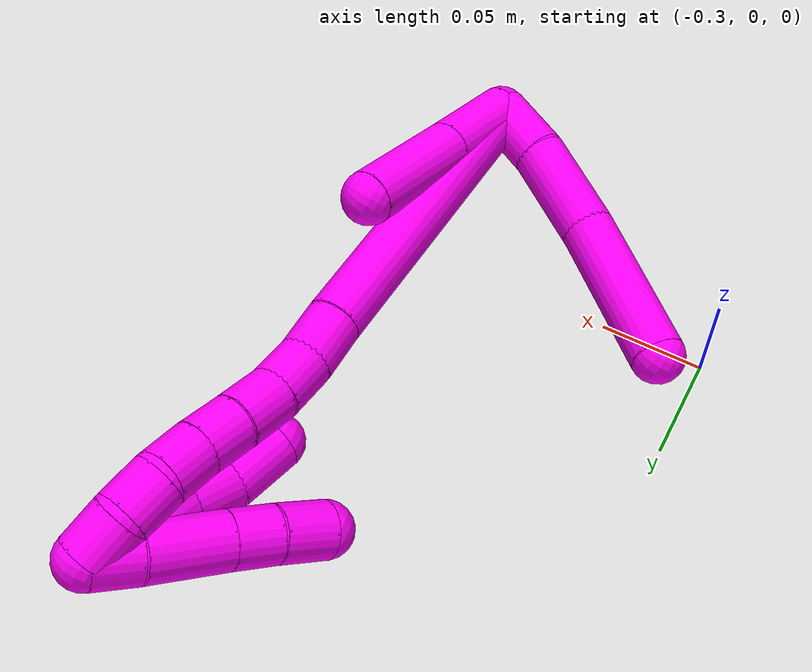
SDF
<sdf version="1.7">
 <world name="default">
  <model name="10">
   <static>0</static>
   <link name="10">
    <collision name="collision-cylinder-e_1_2_8">
     <pose>-0.001367 0.009751 -0.011833 -2.45238 -0.088907 0.246606</pose>
     <geometry><cylinder><radius>0.0125</radius><length>0.030787</length></cylinder></geometry>
     <surface>
      <friction><ode><mu>1.16</mu><mu2>1.16</mu2><slip1>0</slip1><slip2>0</slip2></ode></friction>
      <contact><ode><kp>1e+06</kp><kd>1</kd><max_vel>0</max_vel><min_depth>0.001</min_depth></ode></contact>
     </surface>
    </collision>
    <visual name="visual-cylinder-e_1_2_8">
     <pose>-0.001367 0.009751 -0.011833 -2.45238 -0.088907 0.246606</pose>
     <geometry><cylinder><radius>0.0125</radius><length>0.030787</length></cylinder></geometry>
     <material><ambient>1 0 0.964706 1</ambient></material>
    </visual>
    <collision name="collision-cylinder-e_2_8_9">
     <pose>-0.001628 0.034926 -0.040542 -2.40107 0.048337 -0.12439</pose>
     <geometry><cylinder><radius>0.0125</radius><length>0.04578</length></cylinder></geometry>
     <surface>
      <friction><ode><mu>1.16</mu><mu2>1.16</mu2><slip1>0</slip1><slip2>0</slip2></ode></friction>
      <contact><ode><kp>1e+06</kp><kd>1</kd><max_vel>0</max_vel><min_depth>0.001</min_depth></ode></contact>
     </surface>
    </collision>
    <visual name="visual-cylinder-e_2_8_9">
     <pose>-0.001628 0.034926 -0.040542 -2.40107 0.048337 -0.12439</pose>
     <geometry><cylinder><radius>0.0125</radius><length>0.04578</length></cylinder></geometry>
     <material><ambient>1 0 0.964706 1</ambient></material>
    </visual>
    <collision name="collision-cylinder-e_3_9_6">
     <pose>-0.000776 0.079525 -0.07971 -2.22328 -0.00694 0.014037</pose>
     <geometry><cylinder><radius>0.0125</radius><length>0.073433</length></cylinder></geometry>
     <surface>
      <friction><ode><mu>1.16</mu><mu2>1.16</mu2><slip1>0</slip1><slip2>0</slip2></ode></friction>
      <contact><ode><kp>1e+06</kp><kd>1</kd><max_vel>0</max_vel><min_depth>0.001</min_depth></ode></contact>
     </surface>
    </collision>
    <visual name="visual-cylinder-e_3_9_6">
     <pose>-0.000776 0.079525 -0.07971 -2.22328 -0.00694 0.014037</pose>
     <geometry><cylinder><radius>0.0125</radius><length>0.073433</length></cylinder></geometry>
     <material><ambient>1 0 0.964706 1</ambient></material>
    </visual>
    <collision name="collision-cylinder-e_1_2_10">
     <pose>0.004291 0.019574 0.008525 -1.16006 0.198344 -0.130201</pose>
     <geometry><cylinder><radius>0.0125</radius><length>0.043553</length></cylinder></geometry>
     <surface>
      <friction><ode><mu>1.16</mu><mu2>1.16</mu2><slip1>0</slip1><slip2>0</slip2></ode></friction>
      <contact><ode><kp>1e+06</kp><kd>1</kd><max_vel>0</max_vel><min_depth>0.001</min_depth></ode></contact>
     </surface>
    </collision>
    <visual name="visual-cylinder-e_1_2_10">
     <pose>0.004291 0.019574 0.008525 -1.16006 0.198344 -0.130201</pose>
     <geometry><cylinder><radius>0.0125</radius><length>0.043553</length></cylinder></geometry>
     <material><ambient>1 0 0.964706 1</ambient></material>
    </visual>
    <collision name="collision-cylinder-e_2_10_5">
     <pose>0.013682 0.064528 0.028291 -1.15382 0.1817 -0.118432</pose>
     <geometry><cylinder><radius>0.0125</radius><length>0.056447</length></cylinder></geometry>
     <surface>
      <friction><ode><mu>1.16</mu><mu2>1.16</mu2><slip1>0</slip1><slip2>0</slip2></ode></friction>
      <contact><ode><kp>1e+06</kp><kd>1</kd><max_vel>0</max_vel><min_depth>0.001</min_depth></ode></contact>
     </surface>
    </collision>
    <visual name="visual-cylinder-e_2_10_5">
     <pose>0.013682 0.064528 0.028291 -1.15382 0.1817 -0.118432</pose>
     <geometry><cylinder><radius>0.0125</radius><length>0.056447</length></cylinder></geometry>
     <material><ambient>1 0 0.964706 1</ambient></material>
    </visual>
    <collision name="collision-cylinder-e_1_2_11">
     <pose>0.02361 0.070324 0.013851 -1.37632 0.318214 -0.262366</pose>
     <geometry><cylinder><radius>0.0125</radius><length>0.150928</length></cylinder></geometry>
     <surface>
      <friction><ode><mu>1.16</mu><mu2>1.16</mu2><slip1>0</slip1><slip2>0</slip2></ode></friction>
      <contact><ode><kp>1e+06</kp><kd>1</kd><max_vel>0</max_vel><min_depth>0.001</min_depth></ode></contact>
     </surface>
    </collision>
    <visual name="visual-cylinder-e_1_2_11">
     <pose>0.02361 0.070324 0.013851 -1.37632 0.318214 -0.262366</pose>
     <geometry><cylinder><radius>0.0125</radius><length>0.150928</length></cylinder></geometry>
     <material><ambient>1 0 0.964706 1</ambient></material>
    </visual>
    <collision name="collision-cylinder-e_2_11_12">
     <pose>0.051262 0.151436 0.029355 -1.41874 0.354667 -0.305296</pose>
     <geometry><cylinder><radius>0.0125</radius><length>0.023275</length></cylinder></geometry>
     <surface>
      <friction><ode><mu>1.16</mu><mu2>1.16</mu2><slip1>0</slip1><slip2>0</slip2></ode></friction>
      <contact><ode><kp>1e+06</kp><kd>1</kd><max_vel>0</max_vel><min_depth>0.001</min_depth></ode></contact>
     </surface>
    </collision>
    <visual name="visual-cylinder-e_2_11_12">
     <pose>0.051262 0.151436 0.029355 -1.41874 0.354667 -0.305296</pose>
     <geometry><cylinder><radius>0.0125</radius><length>0.023275</length></cylinder></geometry>
     <material><ambient>1 0 0.964706 1</ambient></material>
    </visual>
    <collision name="collision-cylinder-e_3_12_13">
     <pose>0.057616 0.172688 0.0339 -1.30126 0.209818 -0.15996</pose>
     <geometry><cylinder><radius>0.0125</radius><length>0.022201</length></cylinder></geometry>
     <surface>
      <friction><ode><mu>1.16</mu><mu2>1.16</mu2><slip1>0</slip1><slip2>0</slip2></ode></friction>
      <contact><ode><kp>1e+06</kp><kd>1</kd><max_vel>0</max_vel><min_depth>0.001</min_depth></ode></contact>
     </surface>
    </collision>
    <visual name="visual-cylinder-e_3_12_13">
     <pose>0.057616 0.172688 0.0339 -1.30126 0.209818 -0.15996</pose>
     <geometry><cylinder><radius>0.0125</radius><length>0.022201</length></cylinder></geometry>
     <material><ambient>1 0 0.964706 1</ambient></material>
    </visual>
    <collision name="collision-cylinder-e_4_13_14">
     <pose>0.06159 0.193551 0.041254 -1.16536 0.145844 -0.096208</pose>
     <geometry><cylinder><radius>0.0125</radius><length>0.022874</length></cylinder></geometry>
     <surface>
      <friction><ode><mu>1.16</mu><mu2>1.16</mu2><slip1>0</slip1><slip2>0</slip2></ode></friction>
      <contact><ode><kp>1e+06</kp><kd>1</kd><max_vel>0</max_vel><min_depth>0.001</min_depth></ode></contact>
     </surface>
    </collision>
    <visual name="visual-cylinder-e_4_13_14">
     <pose>0.06159 0.193551 0.041254 -1.16536 0.145844 -0.096208</pose>
     <geometry><cylinder><radius>0.0125</radius><length>0.022874</length></cylinder></geometry>
     <material><ambient>1 0 0.964706 1</ambient></material>
    </visual>
    <collision name="collision-cylinder-e_5_14_15">
     <pose>0.065334 0.212912 0.049949 -1.12962 0.207002 -0.131452</pose>
     <geometry><cylinder><radius>0.0125</radius><length>0.020257</length></cylinder></geometry>
     <surface>
      <friction><ode><mu>1.16</mu><mu2>1.16</mu2><slip1>0</slip1><slip2>0</slip2></ode></friction>
      <contact><ode><kp>1e+06</kp><kd>1</kd><max_vel>0</max_vel><min_depth>0.001</min_depth></ode></contact>
     </surface>
    </collision>
    <visual name="visual-cylinder-e_5_14_15">
     <pose>0.065334 0.212912 0.049949 -1.12962 0.207002 -0.131452</pose>
     <geometry><cylinder><radius>0.0125</radius><length>0.020257</length></cylinder></geometry>
     <material><ambient>1 0 0.964706 1</ambient></material>
    </visual>
    <collision name="collision-cylinder-e_6_15_16">
     <pose>0.069282 0.231109 0.057728 -1.20409 0.186548 -0.128381</pose>
     <geometry><cylinder><radius>0.0125</radius><length>0.020133</length></cylinder></geometry>
     <surface>
      <friction><ode><mu>1.16</mu><mu2>1.16</mu2><slip1>0</slip1><slip2>0</slip2></ode></friction>
      <contact><ode><kp>1e+06</kp><kd>1</kd><max_vel>0</max_vel><min_depth>0.001</min_depth></ode></contact>
     </surface>
    </collision>
    <visual name="visual-cylinder-e_6_15_16">
     <pose>0.069282 0.231109 0.057728 -1.20409 0.186548 -0.128381</pose>
     <geometry><cylinder><radius>0.0125</radius><length>0.020133</length></cylinder></geometry>
     <material><ambient>1 0 0.964706 1</ambient></material>
    </visual>
    <collision name="collision-cylinder-e_7_16_17">
     <pose>0.075647 0.248862 0.064018 -1.25931 0.465712 -0.342201</pose>
     <geometry><cylinder><radius>0.0125</radius><length>0.020031</length></cylinder></geometry>
     <surface>
      <friction><ode><mu>1.16</mu><mu2>1.16</mu2><slip1>0</slip1><slip2>0</slip2></ode></friction>
      <contact><ode><kp>1e+06</kp><kd>1</kd><max_vel>0</max_vel><min_depth>0.001</min_depth></ode></contact>
     </surface>
    </collision>
    <visual name="visual-cylinder-e_7_16_17">
     <pose>0.075647 0.248862 0.064018 -1.25931 0.465712 -0.342201</pose>
     <geometry><cylinder><radius>0.0125</radius><length>0.020031</length></cylinder></geometry>
     <material><ambient>1 0 0.964706 1</ambient></material>
    </visual>
    <collision name="collision-cylinder-e_8_17_1">
     <pose>0.087383 0.264193 0.068821 -1.27704 0.793841 -0.603262</pose>
     <geometry><cylinder><radius>0.0125</radius><length>0.020301</length></cylinder></geometry>
     <surface>
      <friction><ode><mu>1.16</mu><mu2>1.16</mu2><slip1>0</slip1><slip2>0</slip2></ode></friction>
      <contact><ode><kp>1e+06</kp><kd>1</kd><max_vel>0</max_vel><min_depth>0.001</min_depth></ode></contact>
     </surface>
    </collision>
    <visual name="visual-cylinder-e_8_17_1">
     <pose>0.087383 0.264193 0.068821 -1.27704 0.793841 -0.603262</pose>
     <geometry><cylinder><radius>0.0125</radius><length>0.020301</length></cylinder></geometry>
     <material><ambient>1 0 0.964706 1</ambient></material>
    </visual>
    <collision name="collision-cylinder-e_1_1_18">
     <pose>0.09389 0.261843 0.064435 2.18403 -0.065109 -0.125316</pose>
     <geometry><cylinder><radius>0.0125</radius><length>0.022452</length></cylinder></geometry>
     <surface>
      <friction><ode><mu>1.16</mu><mu2>1.16</mu2><slip1>0</slip1><slip2>0</slip2></ode></friction>
      <contact><ode><kp>1e+06</kp><kd>1</kd><max_vel>0</max_vel><min_depth>0.001</min_depth></ode></contact>
     </surface>
    </collision>
    <visual name="visual-cylinder-e_1_1_18">
     <pose>0.09389 0.261843 0.064435 2.18403 -0.065109 -0.125316</pose>
     <geometry><cylinder><radius>0.0125</radius><length>0.022452</length></cylinder></geometry>
     <material><ambient>1 0 0.964706 1</ambient></material>
    </visual>
    <collision name="collision-cylinder-e_2_18_19">
     <pose>0.093579 0.240393 0.052772 1.97216 0.031426 0.047471</pose>
     <geometry><cylinder><radius>0.0125</radius><length>0.026713</length></cylinder></geometry>
     <surface>
      <friction><ode><mu>1.16</mu><mu2>1.16</mu2><slip1>0</slip1><slip2>0</slip2></ode></friction>
      <contact><ode><kp>1e+06</kp><kd>1</kd><max_vel>0</max_vel><min_depth>0.001</min_depth></ode></contact>
     </surface>
    </collision>
    <visual name="visual-cylinder-e_2_18_19">
     <pose>0.093579 0.240393 0.052772 1.97216 0.031426 0.047471</pose>
     <geometry><cylinder><radius>0.0125</radius><length>0.026713</length></cylinder></geometry>
     <material><ambient>1 0 0.964706 1</ambient></material>
    </visual>
    <collision name="collision-cylinder-e_3_19_20">
     <pose>0.092811 0.218197 0.041086 2.14941 -0.100017 -0.184423</pose>
     <geometry><cylinder><radius>0.0125</radius><length>0.023786</length></cylinder></geometry>
     <surface>
      <friction><ode><mu>1.16</mu><mu2>1.16</mu2><slip1>0</slip1><slip2>0</slip2></ode></friction>
      <contact><ode><kp>1e+06</kp><kd>1</kd><max_vel>0</max_vel><min_depth>0.001</min_depth></ode></contact>
     </surface>
    </collision>
    <visual name="visual-cylinder-e_3_19_20">
     <pose>0.092811 0.218197 0.041086 2.14941 -0.100017 -0.184423</pose>
     <geometry><cylinder><radius>0.0125</radius><length>0.023786</length></cylinder></geometry>
     <material><ambient>1 0 0.964706 1</ambient></material>
    </visual>
    <collision name="collision-cylinder-e_4_20_4">
     <pose>0.086638 0.196758 0.029607 1.98044 -0.377539 -0.566781</pose>
     <geometry><cylinder><radius>0.0125</radius><length>0.027049</length></cylinder></geometry>
     <surface>
      <friction><ode><mu>1.16</mu><mu2>1.16</mu2><slip1>0</slip1><slip2>0</slip2></ode></friction>
      <contact><ode><kp>1e+06</kp><kd>1</kd><max_vel>0</max_vel><min_depth>0.001</min_depth></ode></contact>
     </surface>
    </collision>
    <visual name="visual-cylinder-e_4_20_4">
     <pose>0.086638 0.196758 0.029607 1.98044 -0.377539 -0.566781</pose>
     <geometry><cylinder><radius>0.0125</radius><length>0.027049</length></cylinder></geometry>
     <material><ambient>1 0 0.964706 1</ambient></material>
    </visual>
    <collision name="collision-cylinder-e_1_1_21">
     <pose>0.093048 0.265396 0.062486 2.55273 -0.154464 -0.49972</pose>
     <geometry><cylinder><radius>0.0125</radius><length>0.020437</length></cylinder></geometry>
     <surface>
      <friction><ode><mu>1.16</mu><mu2>1.16</mu2><slip1>0</slip1><slip2>0</slip2></ode></friction>
      <contact><ode><kp>1e+06</kp><kd>1</kd><max_vel>0</max_vel><min_depth>0.001</min_depth></ode></contact>
     </surface>
    </collision>
    <visual name="visual-cylinder-e_1_1_21">
     <pose>0.093048 0.265396 0.062486 2.55273 -0.154464 -0.49972</pose>
     <geometry><cylinder><radius>0.0125</radius><length>0.020437</length></cylinder></geometry>
     <material><ambient>1 0 0.964706 1</ambient></material>
    </visual>
    <collision name="collision-cylinder-e_2_21_22">
     <pose>0.089449 0.248798 0.039952 2.48077 -0.112737 -0.326124</pose>
     <geometry><cylinder><radius>0.0125</radius><length>0.036042</length></cylinder></geometry>
     <surface>
      <friction><ode><mu>1.16</mu><mu2>1.16</mu2><slip1>0</slip1><slip2>0</slip2></ode></friction>
      <contact><ode><kp>1e+06</kp><kd>1</kd><max_vel>0</max_vel><min_depth>0.001</min_depth></ode></contact>
     </surface>
    </collision>
    <visual name="visual-cylinder-e_2_21_22">
     <pose>0.089449 0.248798 0.039952 2.48077 -0.112737 -0.326124</pose>
     <geometry><cylinder><radius>0.0125</radius><length>0.036042</length></cylinder></geometry>
     <material><ambient>1 0 0.964706 1</ambient></material>
    </visual>
    <collision name="collision-cylinder-e_3_22_23">
     <pose>0.086317 0.231879 0.017823 2.50339 -0.11058 -0.331954</pose>
     <geometry><cylinder><radius>0.0125</radius><length>0.020023</length></cylinder></geometry>
     <surface>
      <friction><ode><mu>1.16</mu><mu2>1.16</mu2><slip1>0</slip1><slip2>0</slip2></ode></friction>
      <contact><ode><kp>1e+06</kp><kd>1</kd><max_vel>0</max_vel><min_depth>0.001</min_depth></ode></contact>
     </surface>
    </collision>
    <visual name="visual-cylinder-e_3_22_23">
     <pose>0.086317 0.231879 0.017823 2.50339 -0.11058 -0.331954</pose>
     <geometry><cylinder><radius>0.0125</radius><length>0.020023</length></cylinder></geometry>
     <material><ambient>1 0 0.964706 1</ambient></material>
    </visual>
    <collision name="collision-cylinder-e_4_23_3">
     <pose>0.085004 0.218837 0.000483 2.49105 -0.017717 -0.052523</pose>
     <geometry><cylinder><radius>0.0125</radius><length>0.023497</length></cylinder></geometry>
     <surface>
      <friction><ode><mu>1.16</mu><mu2>1.16</mu2><slip1>0</slip1><slip2>0</slip2></ode></friction>
      <contact><ode><kp>1e+06</kp><kd>1</kd><max_vel>0</max_vel><min_depth>0.001</min_depth></ode></contact>
     </surface>
    </collision>
    <visual name="visual-cylinder-e_4_23_3">
     <pose>0.085004 0.218837 0.000483 2.49105 -0.017717 -0.052523</pose>
     <geometry><cylinder><radius>0.0125</radius><length>0.023497</length></cylinder></geometry>
     <material><ambient>1 0 0.964706 1</ambient></material>
    </visual>
    <collision name="collision-sphere-3">
     <pose>0.084795 0.211723 -0.008864 0 -0 0</pose>
     <geometry><sphere><radius>0.0125</radius></sphere></geometry>
     <surface>
      <friction><ode><mu>1.16</mu><mu2>1.16</mu2><slip1>0</slip1><slip2>0</slip2></ode></friction>
      <contact><ode><kp>1e+06</kp><kd>1</kd><max_vel>0</max_vel><min_depth>0.001</min_depth></ode></contact>
     </surface>
    </collision>
    <visual name="visual-sphere-3">
     <pose>0.084795 0.211723 -0.008864 0 -0 0</pose>
     <geometry><sphere><radius>0.0125</radius></sphere></geometry>
     <material><ambient>1 0 0.964706 1</ambient></material>
    </visual>
    <collision name="collision-sphere-23">
     <pose>0.085212 0.225951 0.009831 0 -0 0</pose>
     <geometry><sphere><radius>0.0125</radius></sphere></geometry>
     <surface>
      <friction><ode><mu>1.16</mu><mu2>1.16</mu2><slip1>0</slip1><slip2>0</slip2></ode></friction>
      <contact><ode><kp>1e+06</kp><kd>1</kd><max_vel>0</max_vel><min_depth>0.001</min_depth></ode></contact>
     </surface>
    </collision>
    <visual name="visual-sphere-23">
     <pose>0.085212 0.225951 0.009831 0 -0 0</pose>
     <geometry><sphere><radius>0.0125</radius></sphere></geometry>
     <material><ambient>1 0 0.964706 1</ambient></material>
    </visual>
    <collision name="collision-sphere-22">
     <pose>0.087421 0.237807 0.025815 0 -0 0</pose>
     <geometry><sphere><radius>0.0125</radius></sphere></geometry>
     <surface>
      <friction><ode><mu>1.16</mu><mu2>1.16</mu2><slip1>0</slip1><slip2>0</slip2></ode></friction>
      <contact><ode><kp>1e+06</kp><kd>1</kd><max_vel>0</max_vel><min_depth>0.001</min_depth></ode></contact>
     </surface>
    </collision>
    <visual name="visual-sphere-22">
     <pose>0.087421 0.237807 0.025815 0 -0 0</pose>
     <geometry><sphere><radius>0.0125</radius></sphere></geometry>
     <material><ambient>1 0 0.964706 1</ambient></material>
    </visual>
    <collision name="collision-sphere-21">
     <pose>0.091476 0.259788 0.054089 0 -0 0</pose>
     <geometry><sphere><radius>0.0125</radius></sphere></geometry>
     <surface>
      <friction><ode><mu>1.16</mu><mu2>1.16</mu2><slip1>0</slip1><slip2>0</slip2></ode></friction>
      <contact><ode><kp>1e+06</kp><kd>1</kd><max_vel>0</max_vel><min_depth>0.001</min_depth></ode></contact>
     </surface>
    </collision>
    <visual name="visual-sphere-21">
     <pose>0.091476 0.259788 0.054089 0 -0 0</pose>
     <geometry><sphere><radius>0.0125</radius></sphere></geometry>
     <material><ambient>1 0 0.964706 1</ambient></material>
    </visual>
    <collision name="collision-sphere-4">
     <pose>0.081653 0.185226 0.0246 0 -0 0</pose>
     <geometry><sphere><radius>0.0125</radius></sphere></geometry>
     <surface>
      <friction><ode><mu>1.16</mu><mu2>1.16</mu2><slip1>0</slip1><slip2>0</slip2></ode></friction>
      <contact><ode><kp>1e+06</kp><kd>1</kd><max_vel>0</max_vel><min_depth>0.001</min_depth></ode></contact>
     </surface>
    </collision>
    <visual name="visual-sphere-4">
     <pose>0.081653 0.185226 0.0246 0 -0 0</pose>
     <geometry><sphere><radius>0.0125</radius></sphere></geometry>
     <material><ambient>1 0 0.964706 1</ambient></material>
    </visual>
    <collision name="collision-sphere-20">
     <pose>0.091624 0.20829 0.034614 0 -0 0</pose>
     <geometry><sphere><radius>0.0125</radius></sphere></geometry>
     <surface>
      <friction><ode><mu>1.16</mu><mu2>1.16</mu2><slip1>0</slip1><slip2>0</slip2></ode></friction>
      <contact><ode><kp>1e+06</kp><kd>1</kd><max_vel>0</max_vel><min_depth>0.001</min_depth></ode></contact>
     </surface>
    </collision>
    <visual name="visual-sphere-20">
     <pose>0.091624 0.20829 0.034614 0 -0 0</pose>
     <geometry><sphere><radius>0.0125</radius></sphere></geometry>
     <material><ambient>1 0 0.964706 1</ambient></material>
    </visual>
    <collision name="collision-sphere-5">
     <pose>0.018782 0.089909 0.039533 0 -0 0</pose>
     <geometry><sphere><radius>0.0125</radius></sphere></geometry>
     <surface>
      <friction><ode><mu>1.16</mu><mu2>1.16</mu2><slip1>0</slip1><slip2>0</slip2></ode></friction>
      <contact><ode><kp>1e+06</kp><kd>1</kd><max_vel>0</max_vel><min_depth>0.001</min_depth></ode></contact>
     </surface>
    </collision>
    <visual name="visual-sphere-5">
     <pose>0.018782 0.089909 0.039533 0 -0 0</pose>
     <geometry><sphere><radius>0.0125</radius></sphere></geometry>
     <material><ambient>1 0 0.964706 1</ambient></material>
    </visual>
    <collision name="collision-sphere-10">
     <pose>0.008582 0.039148 0.017049 0 -0 0</pose>
     <geometry><sphere><radius>0.0125</radius></sphere></geometry>
     <surface>
      <friction><ode><mu>1.16</mu><mu2>1.16</mu2><slip1>0</slip1><slip2>0</slip2></ode></friction>
      <contact><ode><kp>1e+06</kp><kd>1</kd><max_vel>0</max_vel><min_depth>0.001</min_depth></ode></contact>
     </surface>
    </collision>
    <visual name="visual-sphere-10">
     <pose>0.008582 0.039148 0.017049 0 -0 0</pose>
     <geometry><sphere><radius>0.0125</radius></sphere></geometry>
     <material><ambient>1 0 0.964706 1</ambient></material>
    </visual>
    <collision name="collision-sphere-6">
     <pose>-0.001031 0.108698 -0.102002 0 -0 0</pose>
     <geometry><sphere><radius>0.0125</radius></sphere></geometry>
     <surface>
      <friction><ode><mu>1.16</mu><mu2>1.16</mu2><slip1>0</slip1><slip2>0</slip2></ode></friction>
      <contact><ode><kp>1e+06</kp><kd>1</kd><max_vel>0</max_vel><min_depth>0.001</min_depth></ode></contact>
     </surface>
    </collision>
    <visual name="visual-sphere-6">
     <pose>-0.001031 0.108698 -0.102002 0 -0 0</pose>
     <geometry><sphere><radius>0.0125</radius></sphere></geometry>
     <material><ambient>1 0 0.964706 1</ambient></material>
    </visual>
    <collision name="collision-sphere-9">
     <pose>-0.000522 0.050352 -0.057417 0 -0 0</pose>
     <geometry><sphere><radius>0.0125</radius></sphere></geometry>
     <surface>
      <friction><ode><mu>1.16</mu><mu2>1.16</mu2><slip1>0</slip1><slip2>0</slip2></ode></friction>
      <contact><ode><kp>1e+06</kp><kd>1</kd><max_vel>0</max_vel><min_depth>0.001</min_depth></ode></contact>
     </surface>
    </collision>
    <visual name="visual-sphere-9">
     <pose>-0.000522 0.050352 -0.057417 0 -0 0</pose>
     <geometry><sphere><radius>0.0125</radius></sphere></geometry>
     <material><ambient>1 0 0.964706 1</ambient></material>
    </visual>
    <collision name="collision-sphere-2">
     <geometry><sphere><radius>0.0125</radius></sphere></geometry>
     <surface>
      <friction><ode><mu>1.16</mu><mu2>1.16</mu2><slip1>0</slip1><slip2>0</slip2></ode></friction>
      <contact><ode><kp>1e+06</kp><kd>1</kd><max_vel>0</max_vel><min_depth>0.001</min_depth></ode></contact>
     </surface>
    </collision>
    <visual name="visual-sphere-2">
     <geometry><sphere><radius>0.0125</radius></sphere></geometry>
     <material><ambient>1 0 0.964706 1</ambient></material>
    </visual>
    <collision name="collision-sphere-19">
     <pose>0.093999 0.228104 0.047557 0 -0 0</pose>
     <geometry><sphere><radius>0.0125</radius></sphere></geometry>
     <surface>
      <friction><ode><mu>1.16</mu><mu2>1.16</mu2><slip1>0</slip1><slip2>0</slip2></ode></friction>
      <contact><ode><kp>1e+06</kp><kd>1</kd><max_vel>0</max_vel><min_depth>0.001</min_depth></ode></contact>
     </surface>
    </collision>
    <visual name="visual-sphere-19">
     <pose>0.093999 0.228104 0.047557 0 -0 0</pose>
     <geometry><sphere><radius>0.0125</radius></sphere></geometry>
     <material><ambient>1 0 0.964706 1</ambient></material>
    </visual>
    <collision name="collision-sphere-8">
     <pose>-0.002734 0.019501 -0.023666 0 -0 0</pose>
     <geometry><sphere><radius>0.0125</radius></sphere></geometry>
     <surface>
      <friction><ode><mu>1.16</mu><mu2>1.16</mu2><slip1>0</slip1><slip2>0</slip2></ode></friction>
      <contact><ode><kp>1e+06</kp><kd>1</kd><max_vel>0</max_vel><min_depth>0.001</min_depth></ode></contact>
     </surface>
    </collision>
    <visual name="visual-sphere-8">
     <pose>-0.002734 0.019501 -0.023666 0 -0 0</pose>
     <geometry><sphere><radius>0.0125</radius></sphere></geometry>
     <material><ambient>1 0 0.964706 1</ambient></material>
    </visual>
    <collision name="collision-sphere-11">
     <pose>0.047221 0.140648 0.027702 0 -0 0</pose>
     <geometry><sphere><radius>0.0125</radius></sphere></geometry>
     <surface>
      <friction><ode><mu>1.16</mu><mu2>1.16</mu2><slip1>0</slip1><slip2>0</slip2></ode></friction>
      <contact><ode><kp>1e+06</kp><kd>1</kd><max_vel>0</max_vel><min_depth>0.001</min_depth></ode></contact>
     </surface>
    </collision>
    <visual name="visual-sphere-11">
     <pose>0.047221 0.140648 0.027702 0 -0 0</pose>
     <geometry><sphere><radius>0.0125</radius></sphere></geometry>
     <material><ambient>1 0 0.964706 1</ambient></material>
    </visual>
    <collision name="collision-sphere-12">
     <pose>0.055304 0.162223 0.031009 0 -0 0</pose>
     <geometry><sphere><radius>0.0125</radius></sphere></geometry>
     <surface>
      <friction><ode><mu>1.16</mu><mu2>1.16</mu2><slip1>0</slip1><slip2>0</slip2></ode></friction>
      <contact><ode><kp>1e+06</kp><kd>1</kd><max_vel>0</max_vel><min_depth>0.001</min_depth></ode></contact>
     </surface>
    </collision>
    <visual name="visual-sphere-12">
     <pose>0.055304 0.162223 0.031009 0 -0 0</pose>
     <geometry><sphere><radius>0.0125</radius></sphere></geometry>
     <material><ambient>1 0 0.964706 1</ambient></material>
    </visual>
    <collision name="collision-sphere-13">
     <pose>0.059928 0.183153 0.036791 0 -0 0</pose>
     <geometry><sphere><radius>0.0125</radius></sphere></geometry>
     <surface>
      <friction><ode><mu>1.16</mu><mu2>1.16</mu2><slip1>0</slip1><slip2>0</slip2></ode></friction>
      <contact><ode><kp>1e+06</kp><kd>1</kd><max_vel>0</max_vel><min_depth>0.001</min_depth></ode></contact>
     </surface>
    </collision>
    <visual name="visual-sphere-13">
     <pose>0.059928 0.183153 0.036791 0 -0 0</pose>
     <geometry><sphere><radius>0.0125</radius></sphere></geometry>
     <material><ambient>1 0 0.964706 1</ambient></material>
    </visual>
    <collision name="collision-sphere-14">
     <pose>0.063252 0.203949 0.045717 0 -0 0</pose>
     <geometry><sphere><radius>0.0125</radius></sphere></geometry>
     <surface>
      <friction><ode><mu>1.16</mu><mu2>1.16</mu2><slip1>0</slip1><slip2>0</slip2></ode></friction>
      <contact><ode><kp>1e+06</kp><kd>1</kd><max_vel>0</max_vel><min_depth>0.001</min_depth></ode></contact>
     </surface>
    </collision>
    <visual name="visual-sphere-14">
     <pose>0.063252 0.203949 0.045717 0 -0 0</pose>
     <geometry><sphere><radius>0.0125</radius></sphere></geometry>
     <material><ambient>1 0 0.964706 1</ambient></material>
    </visual>
    <collision name="collision-sphere-15">
     <pose>0.067415 0.221875 0.054182 0 -0 0</pose>
     <geometry><sphere><radius>0.0125</radius></sphere></geometry>
     <surface>
      <friction><ode><mu>1.16</mu><mu2>1.16</mu2><slip1>0</slip1><slip2>0</slip2></ode></friction>
      <contact><ode><kp>1e+06</kp><kd>1</kd><max_vel>0</max_vel><min_depth>0.001</min_depth></ode></contact>
     </surface>
    </collision>
    <visual name="visual-sphere-15">
     <pose>0.067415 0.221875 0.054182 0 -0 0</pose>
     <geometry><sphere><radius>0.0125</radius></sphere></geometry>
     <material><ambient>1 0 0.964706 1</ambient></material>
    </visual>
    <collision name="collision-sphere-16">
     <pose>0.071149 0.240344 0.061275 0 -0 0</pose>
     <geometry><sphere><radius>0.0125</radius></sphere></geometry>
     <surface>
      <friction><ode><mu>1.16</mu><mu2>1.16</mu2><slip1>0</slip1><slip2>0</slip2></ode></friction>
      <contact><ode><kp>1e+06</kp><kd>1</kd><max_vel>0</max_vel><min_depth>0.001</min_depth></ode></contact>
     </surface>
    </collision>
    <visual name="visual-sphere-16">
     <pose>0.071149 0.240344 0.061275 0 -0 0</pose>
     <geometry><sphere><radius>0.0125</radius></sphere></geometry>
     <material><ambient>1 0 0.964706 1</ambient></material>
    </visual>
    <collision name="collision-sphere-17">
     <pose>0.080145 0.257381 0.066761 0 -0 0</pose>
     <geometry><sphere><radius>0.0125</radius></sphere></geometry>
     <surface>
      <friction><ode><mu>1.16</mu><mu2>1.16</mu2><slip1>0</slip1><slip2>0</slip2></ode></friction>
      <contact><ode><kp>1e+06</kp><kd>1</kd><max_vel>0</max_vel><min_depth>0.001</min_depth></ode></contact>
     </surface>
    </collision>
    <visual name="visual-sphere-17">
     <pose>0.080145 0.257381 0.066761 0 -0 0</pose>
     <geometry><sphere><radius>0.0125</radius></sphere></geometry>
     <material><ambient>1 0 0.964706 1</ambient></material>
    </visual>
    <collision name="collision-sphere-1">
     <pose>0.09462 0.271004 0.070882 0 -0 0</pose>
     <geometry><sphere><radius>0.0125</radius></sphere></geometry>
     <surface>
      <friction><ode><mu>1.16</mu><mu2>1.16</mu2><slip1>0</slip1><slip2>0</slip2></ode></friction>
      <contact><ode><kp>1e+06</kp><kd>1</kd><max_vel>0</max_vel><min_depth>0.001</min_depth></ode></contact>
     </surface>
    </collision>
    <visual name="visual-sphere-1">
     <pose>0.09462 0.271004 0.070882 0 -0 0</pose>
     <geometry><sphere><radius>0.0125</radius></sphere></geometry>
     <material><ambient>1 0 0.964706 1</ambient></material>
    </visual>
    <collision name="collision-sphere-18">
     <pose>0.09316 0.252682 0.057988 0 -0 0</pose>
     <geometry><sphere><radius>0.0125</radius></sphere></geometry>
     <surface>
      <friction><ode><mu>1.16</mu><mu2>1.16</mu2><slip1>0</slip1><slip2>0</slip2></ode></friction>
      <contact><ode><kp>1e+06</kp><kd>1</kd><max_vel>0</max_vel><min_depth>0.001</min_depth></ode></contact>
     </surface>
    </collision>
    <visual name="visual-sphere-18">
     <pose>0.09316 0.252682 0.057988 0 -0 0</pose>
     <geometry><sphere><radius>0.0125</radius></sphere></geometry>
     <material><ambient>1 0 0.964706 1</ambient></material>
    </visual>
    <inertial>
     <pose>0.042997 0.134582 0.014584 0 -0 0</pose>
     <mass>0.75</mass>
     <inertia>
      <ixx>0.000296</ixx>
      <ixy>0</ixy>
      <ixz>0</ixz>
      <iyy>-6e-06</iyy>
      <iyz>0</iyz>
      <izz>-0.000436</izz>
     </inertia>
    </inertial>
   </link>
   <pose>-0.164858 -0.055446 0.0549 0.620067 1.04986 0.815294</pose>
  </model>
 </world>
</sdf>
